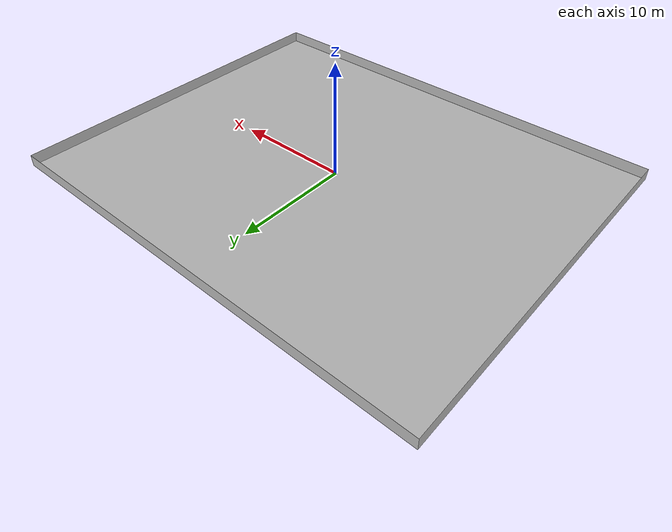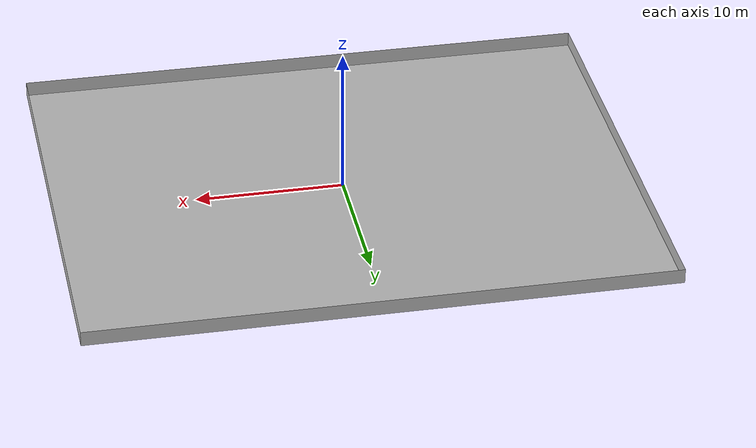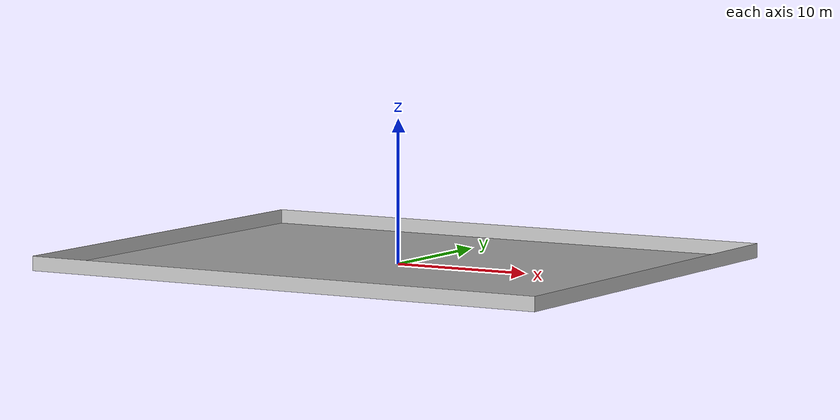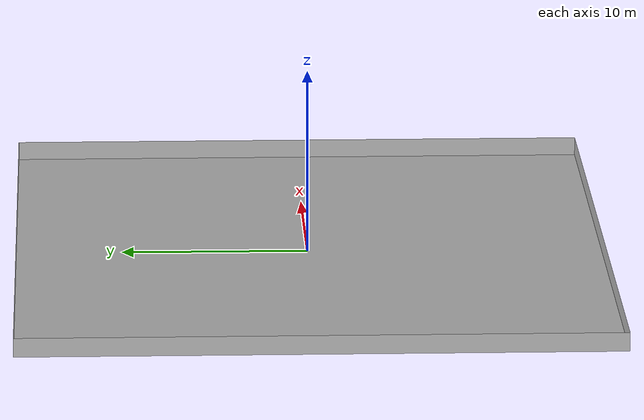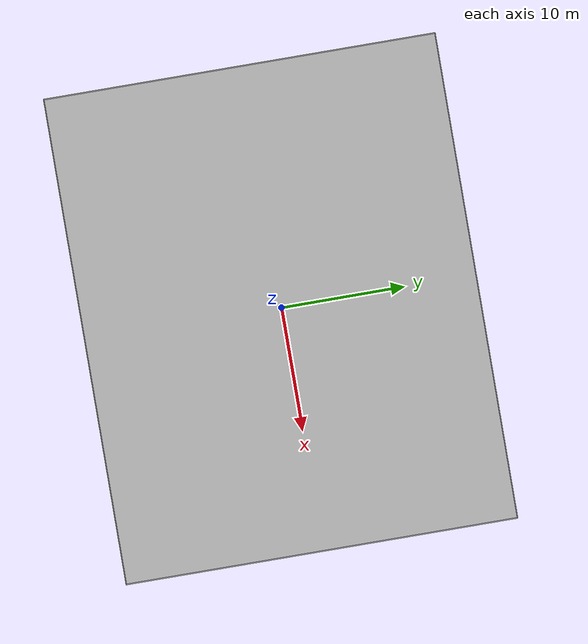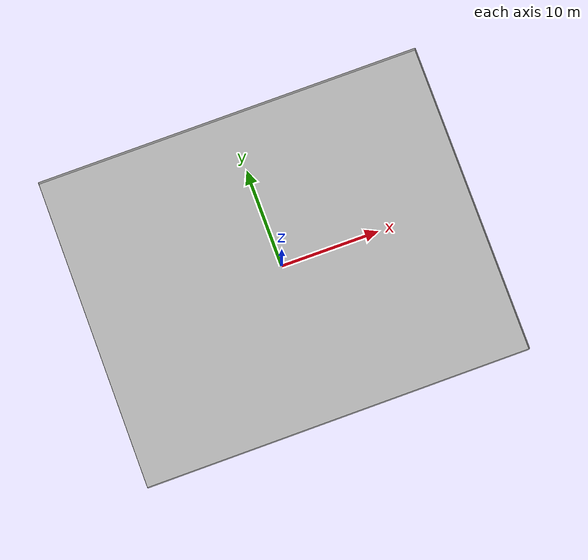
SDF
<?xml version='1.0' encoding='utf-8'?>
<sdf version="1.7">
<model name="template_model">
<link name="track">
<collision name="collision">
<pose>0 0 0 0 0 0</pose>
<geometry>
<mesh>
<uri>model://meshes/morgan_pro/morgan_pro_collision.dae</uri>
</mesh>
</geometry>
</collision>
<visual name="visual">
<pose>0 0 0 0 0 0</pose>
<geometry>
<mesh>
<uri>model://meshes/morgan_pro/morgan_pro.dae</uri>
</mesh>
</geometry>
</visual>
</link>
<static>1</static>
</model>
</sdf>
